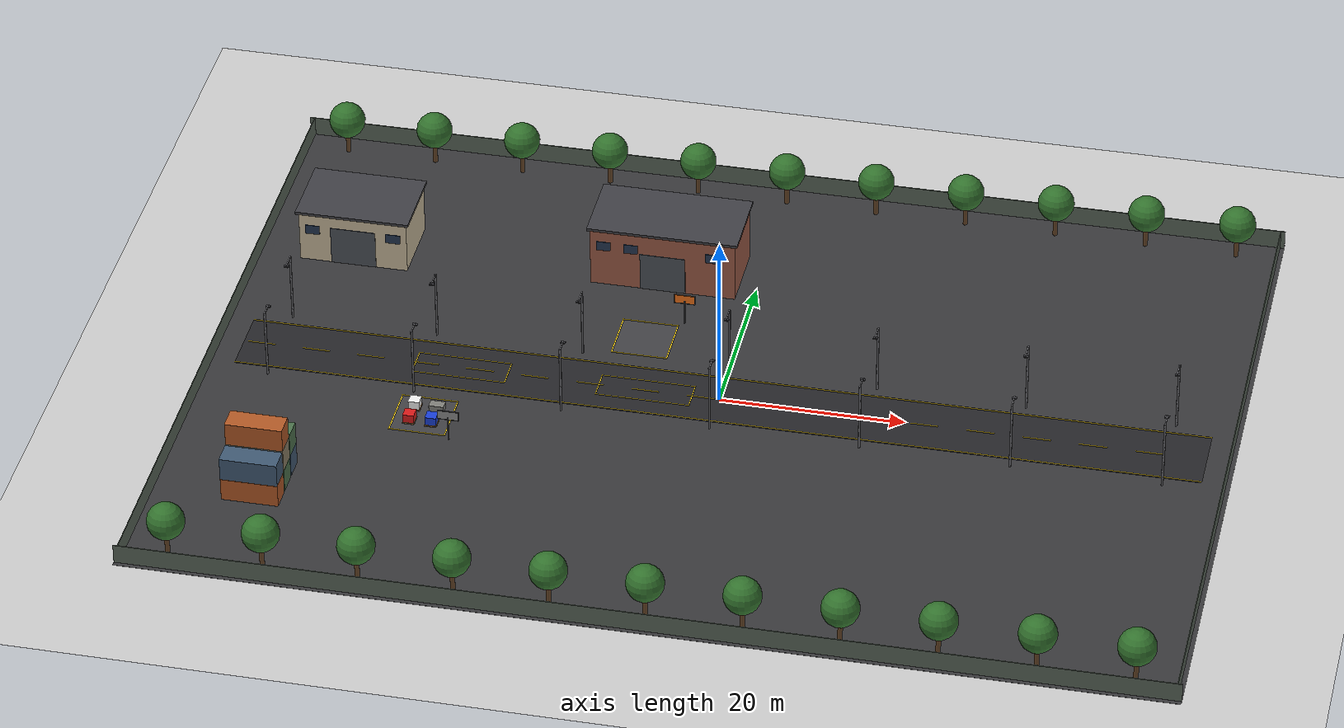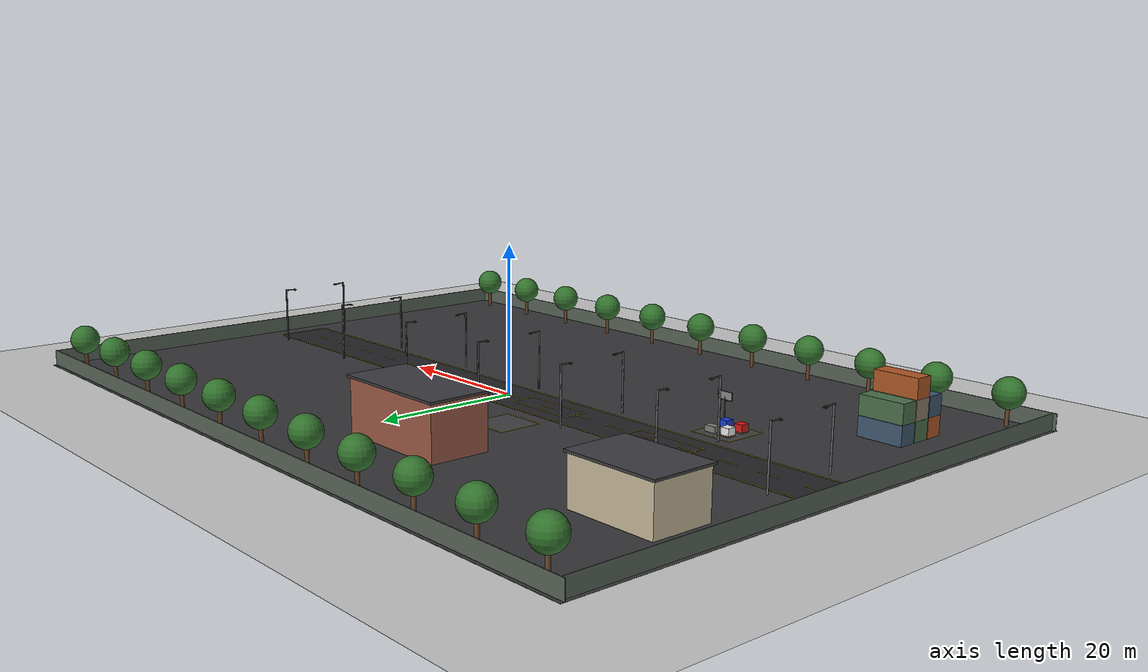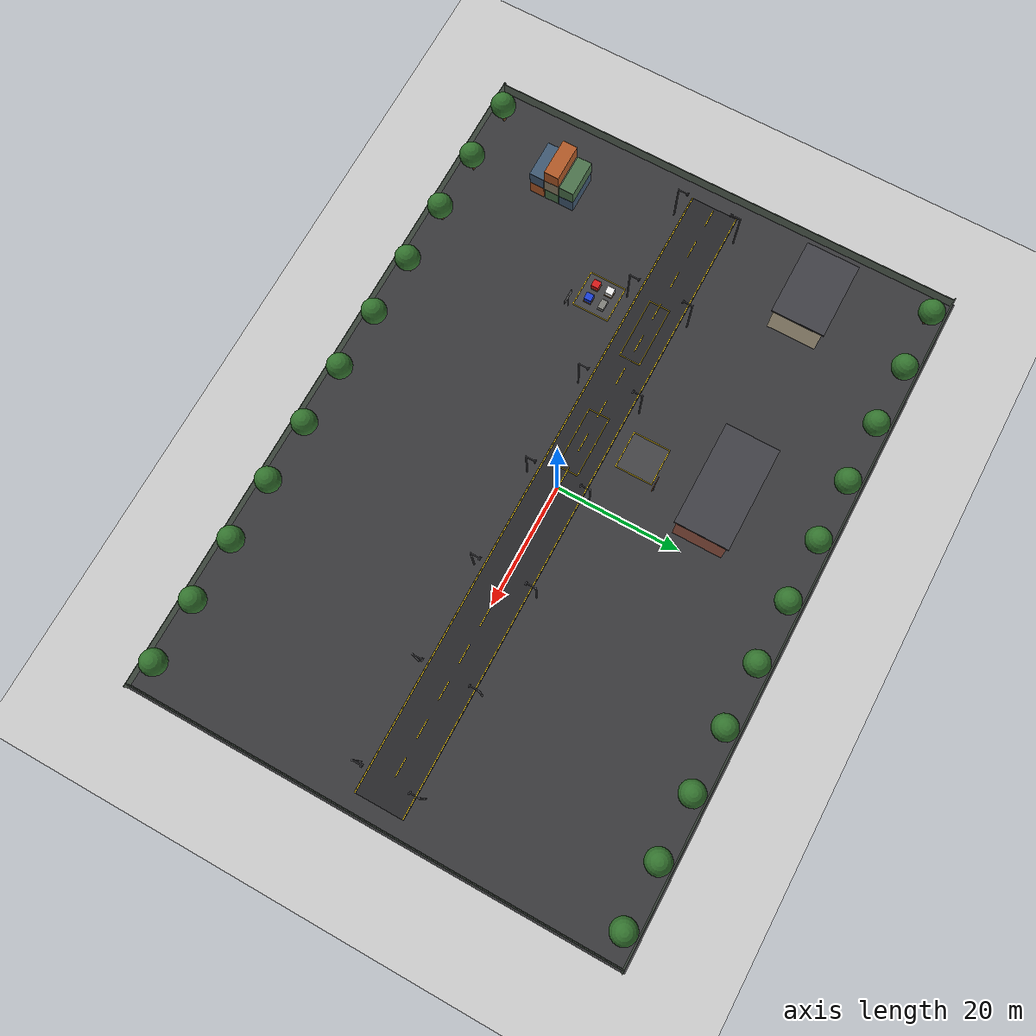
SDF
<sdf version="1.6">
 <world name="default">
  <include><uri>model://ground_plane</uri></include>
  <include><uri>model://sun</uri></include>
  <model name="saha">
   <static>true</static>
   <link name="link">
    <visual name="asfalt">
     <pose>0 0 0.01 0 0 0</pose>
     <geometry><box><size>110 80 0.02</size></box></geometry>
     <material><ambient>0.22 0.22 0.23 1</ambient><diffuse>0.22 0.22 0.23 1</diffuse></material>
    </visual>
    <visual name="yol">
     <pose>0 0 0.022 0 0 0</pose>
     <geometry><box><size>104 8 0.004</size></box></geometry>
     <material><ambient>0.15 0.15 0.16 1</ambient><diffuse>0.15 0.15 0.16 1</diffuse></material>
    </visual>
    <visual name="serit_l">
     <pose>0 3.85 0.026 0 0 0</pose>
     <geometry><box><size>104 0.15 0.004</size></box></geometry>
     <material><ambient>0.95 0.80 0.10 1</ambient><diffuse>0.95 0.80 0.10 1</diffuse></material>
    </visual>
    <visual name="serit_r">
     <pose>0 -3.85 0.026 0 0 0</pose>
     <geometry><box><size>104 0.15 0.004</size></box></geometry>
     <material><ambient>0.95 0.80 0.10 1</ambient><diffuse>0.95 0.80 0.10 1</diffuse></material>
    </visual>
    <visual name="orta_0">
     <pose>-50 0 0.026 0 0 0</pose>
     <geometry><box><size>3 0.15 0.004</size></box></geometry>
     <material><ambient>0.95 0.80 0.10 1</ambient><diffuse>0.95 0.80 0.10 1</diffuse></material>
    </visual>
    <visual name="orta_1">
     <pose>-44 0 0.026 0 0 0</pose>
     <geometry><box><size>3 0.15 0.004</size></box></geometry>
     <material><ambient>0.95 0.80 0.10 1</ambient><diffuse>0.95 0.80 0.10 1</diffuse></material>
    </visual>
    <visual name="orta_2">
     <pose>-38 0 0.026 0 0 0</pose>
     <geometry><box><size>3 0.15 0.004</size></box></geometry>
     <material><ambient>0.95 0.80 0.10 1</ambient><diffuse>0.95 0.80 0.10 1</diffuse></material>
    </visual>
    <visual name="orta_3">
     <pose>-32 0 0.026 0 0 0</pose>
     <geometry><box><size>3 0.15 0.004</size></box></geometry>
     <material><ambient>0.95 0.80 0.10 1</ambient><diffuse>0.95 0.80 0.10 1</diffuse></material>
    </visual>
    <visual name="orta_4">
     <pose>-26 0 0.026 0 0 0</pose>
     <geometry><box><size>3 0.15 0.004</size></box></geometry>
     <material><ambient>0.95 0.80 0.10 1</ambient><diffuse>0.95 0.80 0.10 1</diffuse></material>
    </visual>
    <visual name="orta_5">
     <pose>-20 0 0.026 0 0 0</pose>
     <geometry><box><size>3 0.15 0.004</size></box></geometry>
     <material><ambient>0.95 0.80 0.10 1</ambient><diffuse>0.95 0.80 0.10 1</diffuse></material>
    </visual>
    <visual name="orta_6">
     <pose>-14 0 0.026 0 0 0</pose>
     <geometry><box><size>3 0.15 0.004</size></box></geometry>
     <material><ambient>0.95 0.80 0.10 1</ambient><diffuse>0.95 0.80 0.10 1</diffuse></material>
    </visual>
    <visual name="orta_7">
     <pose>-8 0 0.026 0 0 0</pose>
     <geometry><box><size>3 0.15 0.004</size></box></geometry>
     <material><ambient>0.95 0.80 0.10 1</ambient><diffuse>0.95 0.80 0.10 1</diffuse></material>
    </visual>
    <visual name="orta_8">
     <pose>-2 0 0.026 0 0 0</pose>
     <geometry><box><size>3 0.15 0.004</size></box></geometry>
     <material><ambient>0.95 0.80 0.10 1</ambient><diffuse>0.95 0.80 0.10 1</diffuse></material>
    </visual>
    <visual name="orta_9">
     <pose>4 0 0.026 0 0 0</pose>
     <geometry><box><size>3 0.15 0.004</size></box></geometry>
     <material><ambient>0.95 0.80 0.10 1</ambient><diffuse>0.95 0.80 0.10 1</diffuse></material>
    </visual>
    <visual name="orta_10">
     <pose>10 0 0.026 0 0 0</pose>
     <geometry><box><size>3 0.15 0.004</size></box></geometry>
     <material><ambient>0.95 0.80 0.10 1</ambient><diffuse>0.95 0.80 0.10 1</diffuse></material>
    </visual>
    <visual name="orta_11">
     <pose>16 0 0.026 0 0 0</pose>
     <geometry><box><size>3 0.15 0.004</size></box></geometry>
     <material><ambient>0.95 0.80 0.10 1</ambient><diffuse>0.95 0.80 0.10 1</diffuse></material>
    </visual>
    <visual name="orta_12">
     <pose>22 0 0.026 0 0 0</pose>
     <geometry><box><size>3 0.15 0.004</size></box></geometry>
     <material><ambient>0.95 0.80 0.10 1</ambient><diffuse>0.95 0.80 0.10 1</diffuse></material>
    </visual>
    <visual name="orta_13">
     <pose>28 0 0.026 0 0 0</pose>
     <geometry><box><size>3 0.15 0.004</size></box></geometry>
     <material><ambient>0.95 0.80 0.10 1</ambient><diffuse>0.95 0.80 0.10 1</diffuse></material>
    </visual>
    <visual name="orta_14">
     <pose>34 0 0.026 0 0 0</pose>
     <geometry><box><size>3 0.15 0.004</size></box></geometry>
     <material><ambient>0.95 0.80 0.10 1</ambient><diffuse>0.95 0.80 0.10 1</diffuse></material>
    </visual>
    <visual name="orta_15">
     <pose>40 0 0.026 0 0 0</pose>
     <geometry><box><size>3 0.15 0.004</size></box></geometry>
     <material><ambient>0.95 0.80 0.10 1</ambient><diffuse>0.95 0.80 0.10 1</diffuse></material>
    </visual>
    <visual name="orta_16">
     <pose>46 0 0.026 0 0 0</pose>
     <geometry><box><size>3 0.15 0.004</size></box></geometry>
     <material><ambient>0.95 0.80 0.10 1</ambient><diffuse>0.95 0.80 0.10 1</diffuse></material>
    </visual>
   </link>
  </model>
  <model name="alan_stok">
   <static>true</static>
   <pose>-30 -9 0 0 0 0</pose>
   <link name="link">
    <visual name="zemin">
     <pose>0 0 0.024 0 0 0</pose>
     <geometry><box><size>6 6 0.006</size></box></geometry>
     <material><ambient>0.26 0.26 0.27 1</ambient><diffuse>0.26 0.26 0.27 1</diffuse></material>
    </visual>
    <visual name="cizgi_0">
     <pose>0 3 0.029 0 0 0</pose>
     <geometry><box><size>6.15 0.15 0.004</size></box></geometry>
     <material><ambient>0.95 0.80 0.10 1</ambient><diffuse>0.95 0.80 0.10 1</diffuse></material>
    </visual>
    <visual name="cizgi_1">
     <pose>0 -3 0.029 0 0 0</pose>
     <geometry><box><size>6.15 0.15 0.004</size></box></geometry>
     <material><ambient>0.95 0.80 0.10 1</ambient><diffuse>0.95 0.80 0.10 1</diffuse></material>
    </visual>
    <visual name="cizgi_2">
     <pose>3 0 0.029 0 0 0</pose>
     <geometry><box><size>0.15 6.15 0.004</size></box></geometry>
     <material><ambient>0.95 0.80 0.10 1</ambient><diffuse>0.95 0.80 0.10 1</diffuse></material>
    </visual>
    <visual name="cizgi_3">
     <pose>-3 0 0.029 0 0 0</pose>
     <geometry><box><size>0.15 6.15 0.004</size></box></geometry>
     <material><ambient>0.95 0.80 0.10 1</ambient><diffuse>0.95 0.80 0.10 1</diffuse></material>
    </visual>
    <visual name="direk">
     <pose>3.6 -3.6 1.5 0 0 0</pose>
     <geometry><cylinder><radius>0.07</radius><length>3.0</length></cylinder></geometry>
     <material><ambient>0.40 0.40 0.42 1</ambient><diffuse>0.40 0.40 0.42 1</diffuse></material>
    </visual>
    <visual name="tabela">
     <pose>3.6 -3.6 3.2 0 0 0</pose>
     <geometry><box><size>2.2 0.08 1</size></box></geometry>
     <material><ambient>0.55 0.55 0.55 1</ambient><diffuse>0.55 0.55 0.55 1</diffuse></material>
    </visual>
    <visual name="tabela_cerceve">
     <pose>3.6 -3.6 3.2 0 0 0</pose>
     <geometry><box><size>2.3 0.06 1.1</size></box></geometry>
     <material><ambient>0.25 0.25 0.27 1</ambient><diffuse>0.25 0.25 0.27 1</diffuse></material>
    </visual>
   </link>
  </model>
  <model name="park_stok">
   <static>true</static>
   <pose>-28 0 0 0 0 0</pose>
   <link name="link">
    <visual name="park_0">
     <pose>0 1.7 0.03 0 0 0</pose>
     <geometry><box><size>10.2 0.12 0.004</size></box></geometry>
     <material><ambient>0.95 0.80 0.10 1</ambient><diffuse>0.95 0.80 0.10 1</diffuse></material>
    </visual>
    <visual name="park_1">
     <pose>0 -1.7 0.03 0 0 0</pose>
     <geometry><box><size>10.2 0.12 0.004</size></box></geometry>
     <material><ambient>0.95 0.80 0.10 1</ambient><diffuse>0.95 0.80 0.10 1</diffuse></material>
    </visual>
    <visual name="park_2">
     <pose>5.05 0 0.03 0 0 0</pose>
     <geometry><box><size>0.12 3.4 0.004</size></box></geometry>
     <material><ambient>0.95 0.80 0.10 1</ambient><diffuse>0.95 0.80 0.10 1</diffuse></material>
    </visual>
    <visual name="park_3">
     <pose>-5.05 0 0.03 0 0 0</pose>
     <geometry><box><size>0.12 3.4 0.004</size></box></geometry>
     <material><ambient>0.95 0.80 0.10 1</ambient><diffuse>0.95 0.80 0.10 1</diffuse></material>
    </visual>
   </link>
  </model>
  <model name="alan_atolye">
   <static>true</static>
   <pose>-10 9 0 0 0 0</pose>
   <link name="link">
    <visual name="zemin">
     <pose>0 0 0.024 0 0 0</pose>
     <geometry><box><size>6 6 0.006</size></box></geometry>
     <material><ambient>0.26 0.26 0.27 1</ambient><diffuse>0.26 0.26 0.27 1</diffuse></material>
    </visual>
    <visual name="cizgi_0">
     <pose>0 3 0.029 0 0 0</pose>
     <geometry><box><size>6.15 0.15 0.004</size></box></geometry>
     <material><ambient>0.95 0.80 0.10 1</ambient><diffuse>0.95 0.80 0.10 1</diffuse></material>
    </visual>
    <visual name="cizgi_1">
     <pose>0 -3 0.029 0 0 0</pose>
     <geometry><box><size>6.15 0.15 0.004</size></box></geometry>
     <material><ambient>0.95 0.80 0.10 1</ambient><diffuse>0.95 0.80 0.10 1</diffuse></material>
    </visual>
    <visual name="cizgi_2">
     <pose>3 0 0.029 0 0 0</pose>
     <geometry><box><size>0.15 6.15 0.004</size></box></geometry>
     <material><ambient>0.95 0.80 0.10 1</ambient><diffuse>0.95 0.80 0.10 1</diffuse></material>
    </visual>
    <visual name="cizgi_3">
     <pose>-3 0 0.029 0 0 0</pose>
     <geometry><box><size>0.15 6.15 0.004</size></box></geometry>
     <material><ambient>0.95 0.80 0.10 1</ambient><diffuse>0.95 0.80 0.10 1</diffuse></material>
    </visual>
    <visual name="direk">
     <pose>3.6 3.6 1.5 0 0 0</pose>
     <geometry><cylinder><radius>0.07</radius><length>3.0</length></cylinder></geometry>
     <material><ambient>0.40 0.40 0.42 1</ambient><diffuse>0.40 0.40 0.42 1</diffuse></material>
    </visual>
    <visual name="tabela">
     <pose>3.6 3.6 3.2 0 0 0</pose>
     <geometry><box><size>2.2 0.08 1</size></box></geometry>
     <material><ambient>0.95 0.45 0.10 1</ambient><diffuse>0.95 0.45 0.10 1</diffuse></material>
    </visual>
    <visual name="tabela_cerceve">
     <pose>3.6 3.6 3.2 0 0 0</pose>
     <geometry><box><size>2.3 0.06 1.1</size></box></geometry>
     <material><ambient>0.25 0.25 0.27 1</ambient><diffuse>0.25 0.25 0.27 1</diffuse></material>
    </visual>
   </link>
  </model>
  <model name="park_atolye">
   <static>true</static>
   <pose>-8 0 0 0 0 0</pose>
   <link name="link">
    <visual name="park_0">
     <pose>0 1.7 0.03 0 0 0</pose>
     <geometry><box><size>10.2 0.12 0.004</size></box></geometry>
     <material><ambient>0.95 0.80 0.10 1</ambient><diffuse>0.95 0.80 0.10 1</diffuse></material>
    </visual>
    <visual name="park_1">
     <pose>0 -1.7 0.03 0 0 0</pose>
     <geometry><box><size>10.2 0.12 0.004</size></box></geometry>
     <material><ambient>0.95 0.80 0.10 1</ambient><diffuse>0.95 0.80 0.10 1</diffuse></material>
    </visual>
    <visual name="park_2">
     <pose>5.05 0 0.03 0 0 0</pose>
     <geometry><box><size>0.12 3.4 0.004</size></box></geometry>
     <material><ambient>0.95 0.80 0.10 1</ambient><diffuse>0.95 0.80 0.10 1</diffuse></material>
    </visual>
    <visual name="park_3">
     <pose>-5.05 0 0.03 0 0 0</pose>
     <geometry><box><size>0.12 3.4 0.004</size></box></geometry>
     <material><ambient>0.95 0.80 0.10 1</ambient><diffuse>0.95 0.80 0.10 1</diffuse></material>
    </visual>
   </link>
  </model>
  <model name="atolye_binasi">
   <static>true</static>
   <pose>-10 22 0 0 0 0</pose>
   <link name="link">
    <visual name="duvar">
     <pose>0 0 3.5 0 0 0</pose>
     <geometry><box><size>16 8 7</size></box></geometry>
     <material><ambient>0.62 0.36 0.28 1</ambient><diffuse>0.62 0.36 0.28 1</diffuse></material>
    </visual>
    <collision name="duvar_col">
     <pose>0 0 3.5 0 0 0</pose>
     <geometry><box><size>16 8 7</size></box></geometry>
    </collision>
    <visual name="cati">
     <pose>0 0 7.15 0 0 0</pose>
     <geometry><box><size>16.6 8.6 0.3</size></box></geometry>
     <material><ambient>0.25 0.25 0.27 1</ambient><diffuse>0.25 0.25 0.27 1</diffuse></material>
    </visual>
    <visual name="kapi">
     <pose>0 -4.02 2.25 0 0 0</pose>
     <geometry><box><size>5 0.04 4.5</size></box></geometry>
     <material><ambient>0.30 0.32 0.35 1</ambient><diffuse>0.30 0.32 0.35 1</diffuse></material>
    </visual>
    <visual name="pencere_0">
     <pose>-6.5 -4.02 5 0 0 0</pose>
     <geometry><box><size>1.6 0.04 1.1</size></box></geometry>
     <material><ambient>0.15 0.22 0.32 1</ambient><diffuse>0.15 0.22 0.32 1</diffuse></material>
    </visual>
    <visual name="pencere_1">
     <pose>-3.5 -4.02 5 0 0 0</pose>
     <geometry><box><size>1.6 0.04 1.1</size></box></geometry>
     <material><ambient>0.15 0.22 0.32 1</ambient><diffuse>0.15 0.22 0.32 1</diffuse></material>
    </visual>
    <visual name="pencere_4">
     <pose>5.5 -4.02 5 0 0 0</pose>
     <geometry><box><size>1.6 0.04 1.1</size></box></geometry>
     <material><ambient>0.15 0.22 0.32 1</ambient><diffuse>0.15 0.22 0.32 1</diffuse></material>
    </visual>
   </link>
  </model>
  <model name="ofis">
   <static>true</static>
   <pose>-44 20 0 0 0 0</pose>
   <link name="link">
    <visual name="duvar">
     <pose>0 0 3 0 0 0</pose>
     <geometry><box><size>12 8 6</size></box></geometry>
     <material><ambient>0.80 0.74 0.62 1</ambient><diffuse>0.80 0.74 0.62 1</diffuse></material>
    </visual>
    <collision name="duvar_col">
     <pose>0 0 3 0 0 0</pose>
     <geometry><box><size>12 8 6</size></box></geometry>
    </collision>
    <visual name="cati">
     <pose>0 0 6.15 0 0 0</pose>
     <geometry><box><size>12.6 8.6 0.3</size></box></geometry>
     <material><ambient>0.25 0.25 0.27 1</ambient><diffuse>0.25 0.25 0.27 1</diffuse></material>
    </visual>
    <visual name="kapi">
     <pose>0 -4.02 2.25 0 0 0</pose>
     <geometry><box><size>5 0.04 4.5</size></box></geometry>
     <material><ambient>0.30 0.32 0.35 1</ambient><diffuse>0.30 0.32 0.35 1</diffuse></material>
    </visual>
    <visual name="pencere_0">
     <pose>-4.5 -4.02 4 0 0 0</pose>
     <geometry><box><size>1.6 0.04 1.1</size></box></geometry>
     <material><ambient>0.15 0.22 0.32 1</ambient><diffuse>0.15 0.22 0.32 1</diffuse></material>
    </visual>
    <visual name="pencere_3">
     <pose>4.5 -4.02 4 0 0 0</pose>
     <geometry><box><size>1.6 0.04 1.1</size></box></geometry>
     <material><ambient>0.15 0.22 0.32 1</ambient><diffuse>0.15 0.22 0.32 1</diffuse></material>
    </visual>
   </link>
  </model>
  <model name="konteynerler">
   <static>true</static>
   <pose>-44 -26 0 0 0 0</pose>
   <link name="link">
    <visual name="konteyner_0">
     <pose>0 0 1.3 0 0 0</pose>
     <geometry><box><size>6.1 2.44 2.59</size></box></geometry>
     <material><ambient>0.70 0.35 0.15 1</ambient><diffuse>0.70 0.35 0.15 1</diffuse></material>
    </visual>
    <visual name="konteyner_1">
     <pose>0 0 3.9 0 0 0</pose>
     <geometry><box><size>6.1 2.44 2.59</size></box></geometry>
     <material><ambient>0.25 0.35 0.45 1</ambient><diffuse>0.25 0.35 0.45 1</diffuse></material>
    </visual>
    <visual name="konteyner_2">
     <pose>0 2.6 1.3 0 0 0</pose>
     <geometry><box><size>6.1 2.44 2.59</size></box></geometry>
     <material><ambient>0.30 0.45 0.30 1</ambient><diffuse>0.30 0.45 0.30 1</diffuse></material>
    </visual>
    <visual name="konteyner_3">
     <pose>0 2.6 3.9 0 0 0</pose>
     <geometry><box><size>6.1 2.44 2.59</size></box></geometry>
     <material><ambient>0.55 0.50 0.40 1</ambient><diffuse>0.55 0.50 0.40 1</diffuse></material>
    </visual>
    <visual name="konteyner_4">
     <pose>0 2.6 6.5 0 0 0</pose>
     <geometry><box><size>6.1 2.44 2.59</size></box></geometry>
     <material><ambient>0.70 0.35 0.15 1</ambient><diffuse>0.70 0.35 0.15 1</diffuse></material>
    </visual>
    <visual name="konteyner_5">
     <pose>0 5.2 1.3 0 0 0</pose>
     <geometry><box><size>6.1 2.44 2.59</size></box></geometry>
     <material><ambient>0.25 0.35 0.45 1</ambient><diffuse>0.25 0.35 0.45 1</diffuse></material>
    </visual>
    <visual name="konteyner_6">
     <pose>0 5.2 3.9 0 0 0</pose>
     <geometry><box><size>6.1 2.44 2.59</size></box></geometry>
     <material><ambient>0.30 0.45 0.30 1</ambient><diffuse>0.30 0.45 0.30 1</diffuse></material>
    </visual>
   </link>
  </model>
  <model name="direkler">
   <static>true</static>
   <link name="link">
    <visual name="direk_0_1">
     <pose>-48 5.2 4 0 0 0</pose>
     <geometry><cylinder><radius>0.12</radius><length>8.0</length></cylinder></geometry>
     <material><ambient>0.40 0.40 0.42 1</ambient><diffuse>0.40 0.40 0.42 1</diffuse></material>
    </visual>
    <visual name="kol_0_1">
     <pose>-48 4.4 7.9 0 0 0</pose>
     <geometry><box><size>0.12 1.6 0.12</size></box></geometry>
     <material><ambient>0.40 0.40 0.42 1</ambient><diffuse>0.40 0.40 0.42 1</diffuse></material>
    </visual>
    <visual name="lamba_0_1">
     <pose>-48 3.7 7.8 0 0 0</pose>
     <geometry><box><size>0.5 0.3 0.12</size></box></geometry>
     <material><ambient>0.25 0.25 0.27 1</ambient><diffuse>0.25 0.25 0.27 1</diffuse></material>
    </visual>
    <visual name="direk_0_-1">
     <pose>-48 -5.2 4 0 0 0</pose>
     <geometry><cylinder><radius>0.12</radius><length>8.0</length></cylinder></geometry>
     <material><ambient>0.40 0.40 0.42 1</ambient><diffuse>0.40 0.40 0.42 1</diffuse></material>
    </visual>
    <visual name="kol_0_-1">
     <pose>-48 -4.4 7.9 0 0 0</pose>
     <geometry><box><size>0.12 1.6 0.12</size></box></geometry>
     <material><ambient>0.40 0.40 0.42 1</ambient><diffuse>0.40 0.40 0.42 1</diffuse></material>
    </visual>
    <visual name="lamba_0_-1">
     <pose>-48 -3.7 7.8 0 0 0</pose>
     <geometry><box><size>0.5 0.3 0.12</size></box></geometry>
     <material><ambient>0.25 0.25 0.27 1</ambient><diffuse>0.25 0.25 0.27 1</diffuse></material>
    </visual>
    <visual name="direk_1_1">
     <pose>-32 5.2 4 0 0 0</pose>
     <geometry><cylinder><radius>0.12</radius><length>8.0</length></cylinder></geometry>
     <material><ambient>0.40 0.40 0.42 1</ambient><diffuse>0.40 0.40 0.42 1</diffuse></material>
    </visual>
    <visual name="kol_1_1">
     <pose>-32 4.4 7.9 0 0 0</pose>
     <geometry><box><size>0.12 1.6 0.12</size></box></geometry>
     <material><ambient>0.40 0.40 0.42 1</ambient><diffuse>0.40 0.40 0.42 1</diffuse></material>
    </visual>
    <visual name="lamba_1_1">
     <pose>-32 3.7 7.8 0 0 0</pose>
     <geometry><box><size>0.5 0.3 0.12</size></box></geometry>
     <material><ambient>0.25 0.25 0.27 1</ambient><diffuse>0.25 0.25 0.27 1</diffuse></material>
    </visual>
    <visual name="direk_1_-1">
     <pose>-32 -5.2 4 0 0 0</pose>
     <geometry><cylinder><radius>0.12</radius><length>8.0</length></cylinder></geometry>
     <material><ambient>0.40 0.40 0.42 1</ambient><diffuse>0.40 0.40 0.42 1</diffuse></material>
    </visual>
    <visual name="kol_1_-1">
     <pose>-32 -4.4 7.9 0 0 0</pose>
     <geometry><box><size>0.12 1.6 0.12</size></box></geometry>
     <material><ambient>0.40 0.40 0.42 1</ambient><diffuse>0.40 0.40 0.42 1</diffuse></material>
    </visual>
    <visual name="lamba_1_-1">
     <pose>-32 -3.7 7.8 0 0 0</pose>
     <geometry><box><size>0.5 0.3 0.12</size></box></geometry>
     <material><ambient>0.25 0.25 0.27 1</ambient><diffuse>0.25 0.25 0.27 1</diffuse></material>
    </visual>
    <visual name="direk_2_1">
     <pose>-16 5.2 4 0 0 0</pose>
     <geometry><cylinder><radius>0.12</radius><length>8.0</length></cylinder></geometry>
     <material><ambient>0.40 0.40 0.42 1</ambient><diffuse>0.40 0.40 0.42 1</diffuse></material>
    </visual>
    <visual name="kol_2_1">
     <pose>-16 4.4 7.9 0 0 0</pose>
     <geometry><box><size>0.12 1.6 0.12</size></box></geometry>
     <material><ambient>0.40 0.40 0.42 1</ambient><diffuse>0.40 0.40 0.42 1</diffuse></material>
    </visual>
    <visual name="lamba_2_1">
     <pose>-16 3.7 7.8 0 0 0</pose>
     <geometry><box><size>0.5 0.3 0.12</size></box></geometry>
     <material><ambient>0.25 0.25 0.27 1</ambient><diffuse>0.25 0.25 0.27 1</diffuse></material>
    </visual>
    <visual name="direk_2_-1">
     <pose>-16 -5.2 4 0 0 0</pose>
     <geometry><cylinder><radius>0.12</radius><length>8.0</length></cylinder></geometry>
     <material><ambient>0.40 0.40 0.42 1</ambient><diffuse>0.40 0.40 0.42 1</diffuse></material>
    </visual>
    <visual name="kol_2_-1">
     <pose>-16 -4.4 7.9 0 0 0</pose>
     <geometry><box><size>0.12 1.6 0.12</size></box></geometry>
     <material><ambient>0.40 0.40 0.42 1</ambient><diffuse>0.40 0.40 0.42 1</diffuse></material>
    </visual>
    <visual name="lamba_2_-1">
     <pose>-16 -3.7 7.8 0 0 0</pose>
     <geometry><box><size>0.5 0.3 0.12</size></box></geometry>
     <material><ambient>0.25 0.25 0.27 1</ambient><diffuse>0.25 0.25 0.27 1</diffuse></material>
    </visual>
    <visual name="direk_3_1">
     <pose>0 5.2 4 0 0 0</pose>
     <geometry><cylinder><radius>0.12</radius><length>8.0</length></cylinder></geometry>
     <material><ambient>0.40 0.40 0.42 1</ambient><diffuse>0.40 0.40 0.42 1</diffuse></material>
    </visual>
    <visual name="kol_3_1">
     <pose>0 4.4 7.9 0 0 0</pose>
     <geometry><box><size>0.12 1.6 0.12</size></box></geometry>
     <material><ambient>0.40 0.40 0.42 1</ambient><diffuse>0.40 0.40 0.42 1</diffuse></material>
    </visual>
    <visual name="lamba_3_1">
     <pose>0 3.7 7.8 0 0 0</pose>
     <geometry><box><size>0.5 0.3 0.12</size></box></geometry>
     <material><ambient>0.25 0.25 0.27 1</ambient><diffuse>0.25 0.25 0.27 1</diffuse></material>
    </visual>
    <visual name="direk_3_-1">
     <pose>0 -5.2 4 0 0 0</pose>
     <geometry><cylinder><radius>0.12</radius><length>8.0</length></cylinder></geometry>
     <material><ambient>0.40 0.40 0.42 1</ambient><diffuse>0.40 0.40 0.42 1</diffuse></material>
    </visual>
    <visual name="kol_3_-1">
     <pose>0 -4.4 7.9 0 0 0</pose>
     <geometry><box><size>0.12 1.6 0.12</size></box></geometry>
     <material><ambient>0.40 0.40 0.42 1</ambient><diffuse>0.40 0.40 0.42 1</diffuse></material>
    </visual>
    <visual name="lamba_3_-1">
     <pose>0 -3.7 7.8 0 0 0</pose>
     <geometry><box><size>0.5 0.3 0.12</size></box></geometry>
     <material><ambient>0.25 0.25 0.27 1</ambient><diffuse>0.25 0.25 0.27 1</diffuse></material>
    </visual>
    <visual name="direk_4_1">
     <pose>16 5.2 4 0 0 0</pose>
     <geometry><cylinder><radius>0.12</radius><length>8.0</length></cylinder></geometry>
     <material><ambient>0.40 0.40 0.42 1</ambient><diffuse>0.40 0.40 0.42 1</diffuse></material>
    </visual>
    <visual name="kol_4_1">
     <pose>16 4.4 7.9 0 0 0</pose>
     <geometry><box><size>0.12 1.6 0.12</size></box></geometry>
     <material><ambient>0.40 0.40 0.42 1</ambient><diffuse>0.40 0.40 0.42 1</diffuse></material>
    </visual>
    <visual name="lamba_4_1">
     <pose>16 3.7 7.8 0 0 0</pose>
     <geometry><box><size>0.5 0.3 0.12</size></box></geometry>
     <material><ambient>0.25 0.25 0.27 1</ambient><diffuse>0.25 0.25 0.27 1</diffuse></material>
    </visual>
    <visual name="direk_4_-1">
     <pose>16 -5.2 4 0 0 0</pose>
     <geometry><cylinder><radius>0.12</radius><length>8.0</length></cylinder></geometry>
     <material><ambient>0.40 0.40 0.42 1</ambient><diffuse>0.40 0.40 0.42 1</diffuse></material>
    </visual>
    <visual name="kol_4_-1">
     <pose>16 -4.4 7.9 0 0 0</pose>
     <geometry><box><size>0.12 1.6 0.12</size></box></geometry>
     <material><ambient>0.40 0.40 0.42 1</ambient><diffuse>0.40 0.40 0.42 1</diffuse></material>
    </visual>
    <visual name="lamba_4_-1">
     <pose>16 -3.7 7.8 0 0 0</pose>
     <geometry><box><size>0.5 0.3 0.12</size></box></geometry>
     <material><ambient>0.25 0.25 0.27 1</ambient><diffuse>0.25 0.25 0.27 1</diffuse></material>
    </visual>
    <visual name="direk_5_1">
     <pose>32 5.2 4 0 0 0</pose>
     <geometry><cylinder><radius>0.12</radius><length>8.0</length></cylinder></geometry>
     <material><ambient>0.40 0.40 0.42 1</ambient><diffuse>0.40 0.40 0.42 1</diffuse></material>
    </visual>
    <visual name="kol_5_1">
     <pose>32 4.4 7.9 0 0 0</pose>
     <geometry><box><size>0.12 1.6 0.12</size></box></geometry>
     <material><ambient>0.40 0.40 0.42 1</ambient><diffuse>0.40 0.40 0.42 1</diffuse></material>
    </visual>
    <visual name="lamba_5_1">
     <pose>32 3.7 7.8 0 0 0</pose>
     <geometry><box><size>0.5 0.3 0.12</size></box></geometry>
     <material><ambient>0.25 0.25 0.27 1</ambient><diffuse>0.25 0.25 0.27 1</diffuse></material>
    </visual>
    <visual name="direk_5_-1">
     <pose>32 -5.2 4 0 0 0</pose>
     <geometry><cylinder><radius>0.12</radius><length>8.0</length></cylinder></geometry>
     <material><ambient>0.40 0.40 0.42 1</ambient><diffuse>0.40 0.40 0.42 1</diffuse></material>
    </visual>
    <visual name="kol_5_-1">
     <pose>32 -4.4 7.9 0 0 0</pose>
     <geometry><box><size>0.12 1.6 0.12</size></box></geometry>
     <material><ambient>0.40 0.40 0.42 1</ambient><diffuse>0.40 0.40 0.42 1</diffuse></material>
    </visual>
    <visual name="lamba_5_-1">
     <pose>32 -3.7 7.8 0 0 0</pose>
     <geometry><box><size>0.5 0.3 0.12</size></box></geometry>
     <material><ambient>0.25 0.25 0.27 1</ambient><diffuse>0.25 0.25 0.27 1</diffuse></material>
    </visual>
    <visual name="direk_6_1">
     <pose>48 5.2 4 0 0 0</pose>
     <geometry><cylinder><radius>0.12</radius><length>8.0</length></cylinder></geometry>
     <material><ambient>0.40 0.40 0.42 1</ambient><diffuse>0.40 0.40 0.42 1</diffuse></material>
    </visual>
    <visual name="kol_6_1">
     <pose>48 4.4 7.9 0 0 0</pose>
     <geometry><box><size>0.12 1.6 0.12</size></box></geometry>
     <material><ambient>0.40 0.40 0.42 1</ambient><diffuse>0.40 0.40 0.42 1</diffuse></material>
    </visual>
    <visual name="lamba_6_1">
     <pose>48 3.7 7.8 0 0 0</pose>
     <geometry><box><size>0.5 0.3 0.12</size></box></geometry>
     <material><ambient>0.25 0.25 0.27 1</ambient><diffuse>0.25 0.25 0.27 1</diffuse></material>
    </visual>
    <visual name="direk_6_-1">
     <pose>48 -5.2 4 0 0 0</pose>
     <geometry><cylinder><radius>0.12</radius><length>8.0</length></cylinder></geometry>
     <material><ambient>0.40 0.40 0.42 1</ambient><diffuse>0.40 0.40 0.42 1</diffuse></material>
    </visual>
    <visual name="kol_6_-1">
     <pose>48 -4.4 7.9 0 0 0</pose>
     <geometry><box><size>0.12 1.6 0.12</size></box></geometry>
     <material><ambient>0.40 0.40 0.42 1</ambient><diffuse>0.40 0.40 0.42 1</diffuse></material>
    </visual>
    <visual name="lamba_6_-1">
     <pose>48 -3.7 7.8 0 0 0</pose>
     <geometry><box><size>0.5 0.3 0.12</size></box></geometry>
     <material><ambient>0.25 0.25 0.27 1</ambient><diffuse>0.25 0.25 0.27 1</diffuse></material>
    </visual>
   </link>
  </model>
  <model name="agaclar">
   <static>true</static>
   <link name="link">
    <visual name="govde_0">
     <pose>-50 37 1.5 0 0 0</pose>
     <geometry><cylinder><radius>0.25</radius><length>3.0</length></cylinder></geometry>
     <material><ambient>0.40 0.27 0.15 1</ambient><diffuse>0.40 0.27 0.15 1</diffuse></material>
    </visual>
    <visual name="yaprak_0">
     <pose>-50 37 4.2 0 0 0</pose>
     <geometry><sphere><radius>2.0</radius></sphere></geometry>
     <material><ambient>0.20 0.45 0.18 1</ambient><diffuse>0.20 0.45 0.18 1</diffuse></material>
    </visual>
    <visual name="govde_1">
     <pose>-50 -37 1.5 0 0 0</pose>
     <geometry><cylinder><radius>0.25</radius><length>3.0</length></cylinder></geometry>
     <material><ambient>0.40 0.27 0.15 1</ambient><diffuse>0.40 0.27 0.15 1</diffuse></material>
    </visual>
    <visual name="yaprak_1">
     <pose>-50 -37 4.2 0 0 0</pose>
     <geometry><sphere><radius>2.0</radius></sphere></geometry>
     <material><ambient>0.20 0.45 0.18 1</ambient><diffuse>0.20 0.45 0.18 1</diffuse></material>
    </visual>
    <visual name="govde_2">
     <pose>-40 37 1.5 0 0 0</pose>
     <geometry><cylinder><radius>0.25</radius><length>3.0</length></cylinder></geometry>
     <material><ambient>0.40 0.27 0.15 1</ambient><diffuse>0.40 0.27 0.15 1</diffuse></material>
    </visual>
    <visual name="yaprak_2">
     <pose>-40 37 4.2 0 0 0</pose>
     <geometry><sphere><radius>2.0</radius></sphere></geometry>
     <material><ambient>0.20 0.45 0.18 1</ambient><diffuse>0.20 0.45 0.18 1</diffuse></material>
    </visual>
    <visual name="govde_3">
     <pose>-40 -37 1.5 0 0 0</pose>
     <geometry><cylinder><radius>0.25</radius><length>3.0</length></cylinder></geometry>
     <material><ambient>0.40 0.27 0.15 1</ambient><diffuse>0.40 0.27 0.15 1</diffuse></material>
    </visual>
    <visual name="yaprak_3">
     <pose>-40 -37 4.2 0 0 0</pose>
     <geometry><sphere><radius>2.0</radius></sphere></geometry>
     <material><ambient>0.20 0.45 0.18 1</ambient><diffuse>0.20 0.45 0.18 1</diffuse></material>
    </visual>
    <visual name="govde_4">
     <pose>-30 37 1.5 0 0 0</pose>
     <geometry><cylinder><radius>0.25</radius><length>3.0</length></cylinder></geometry>
     <material><ambient>0.40 0.27 0.15 1</ambient><diffuse>0.40 0.27 0.15 1</diffuse></material>
    </visual>
    <visual name="yaprak_4">
     <pose>-30 37 4.2 0 0 0</pose>
     <geometry><sphere><radius>2.0</radius></sphere></geometry>
     <material><ambient>0.20 0.45 0.18 1</ambient><diffuse>0.20 0.45 0.18 1</diffuse></material>
    </visual>
    <visual name="govde_5">
     <pose>-30 -37 1.5 0 0 0</pose>
     <geometry><cylinder><radius>0.25</radius><length>3.0</length></cylinder></geometry>
     <material><ambient>0.40 0.27 0.15 1</ambient><diffuse>0.40 0.27 0.15 1</diffuse></material>
    </visual>
    <visual name="yaprak_5">
     <pose>-30 -37 4.2 0 0 0</pose>
     <geometry><sphere><radius>2.0</radius></sphere></geometry>
     <material><ambient>0.20 0.45 0.18 1</ambient><diffuse>0.20 0.45 0.18 1</diffuse></material>
    </visual>
    <visual name="govde_6">
     <pose>-20 37 1.5 0 0 0</pose>
     <geometry><cylinder><radius>0.25</radius><length>3.0</length></cylinder></geometry>
     <material><ambient>0.40 0.27 0.15 1</ambient><diffuse>0.40 0.27 0.15 1</diffuse></material>
    </visual>
    <visual name="yaprak_6">
     <pose>-20 37 4.2 0 0 0</pose>
     <geometry><sphere><radius>2.0</radius></sphere></geometry>
     <material><ambient>0.20 0.45 0.18 1</ambient><diffuse>0.20 0.45 0.18 1</diffuse></material>
    </visual>
    <visual name="govde_7">
     <pose>-20 -37 1.5 0 0 0</pose>
     <geometry><cylinder><radius>0.25</radius><length>3.0</length></cylinder></geometry>
     <material><ambient>0.40 0.27 0.15 1</ambient><diffuse>0.40 0.27 0.15 1</diffuse></material>
    </visual>
    <visual name="yaprak_7">
     <pose>-20 -37 4.2 0 0 0</pose>
     <geometry><sphere><radius>2.0</radius></sphere></geometry>
     <material><ambient>0.20 0.45 0.18 1</ambient><diffuse>0.20 0.45 0.18 1</diffuse></material>
    </visual>
    <visual name="govde_8">
     <pose>-10 37 1.5 0 0 0</pose>
     <geometry><cylinder><radius>0.25</radius><length>3.0</length></cylinder></geometry>
     <material><ambient>0.40 0.27 0.15 1</ambient><diffuse>0.40 0.27 0.15 1</diffuse></material>
    </visual>
    <visual name="yaprak_8">
     <pose>-10 37 4.2 0 0 0</pose>
     <geometry><sphere><radius>2.0</radius></sphere></geometry>
     <material><ambient>0.20 0.45 0.18 1</ambient><diffuse>0.20 0.45 0.18 1</diffuse></material>
    </visual>
    <visual name="govde_9">
     <pose>-10 -37 1.5 0 0 0</pose>
     <geometry><cylinder><radius>0.25</radius><length>3.0</length></cylinder></geometry>
     <material><ambient>0.40 0.27 0.15 1</ambient><diffuse>0.40 0.27 0.15 1</diffuse></material>
    </visual>
    <visual name="yaprak_9">
     <pose>-10 -37 4.2 0 0 0</pose>
     <geometry><sphere><radius>2.0</radius></sphere></geometry>
     <material><ambient>0.20 0.45 0.18 1</ambient><diffuse>0.20 0.45 0.18 1</diffuse></material>
    </visual>
    <visual name="govde_10">
     <pose>0 37 1.5 0 0 0</pose>
     <geometry><cylinder><radius>0.25</radius><length>3.0</length></cylinder></geometry>
     <material><ambient>0.40 0.27 0.15 1</ambient><diffuse>0.40 0.27 0.15 1</diffuse></material>
    </visual>
    <visual name="yaprak_10">
     <pose>0 37 4.2 0 0 0</pose>
     <geometry><sphere><radius>2.0</radius></sphere></geometry>
     <material><ambient>0.20 0.45 0.18 1</ambient><diffuse>0.20 0.45 0.18 1</diffuse></material>
    </visual>
    <visual name="govde_11">
     <pose>0 -37 1.5 0 0 0</pose>
     <geometry><cylinder><radius>0.25</radius><length>3.0</length></cylinder></geometry>
     <material><ambient>0.40 0.27 0.15 1</ambient><diffuse>0.40 0.27 0.15 1</diffuse></material>
    </visual>
    <visual name="yaprak_11">
     <pose>0 -37 4.2 0 0 0</pose>
     <geometry><sphere><radius>2.0</radius></sphere></geometry>
     <material><ambient>0.20 0.45 0.18 1</ambient><diffuse>0.20 0.45 0.18 1</diffuse></material>
    </visual>
    <visual name="govde_12">
     <pose>10 37 1.5 0 0 0</pose>
     <geometry><cylinder><radius>0.25</radius><length>3.0</length></cylinder></geometry>
     <material><ambient>0.40 0.27 0.15 1</ambient><diffuse>0.40 0.27 0.15 1</diffuse></material>
    </visual>
    <visual name="yaprak_12">
     <pose>10 37 4.2 0 0 0</pose>
     <geometry><sphere><radius>2.0</radius></sphere></geometry>
     <material><ambient>0.20 0.45 0.18 1</ambient><diffuse>0.20 0.45 0.18 1</diffuse></material>
    </visual>
    <visual name="govde_13">
     <pose>10 -37 1.5 0 0 0</pose>
     <geometry><cylinder><radius>0.25</radius><length>3.0</length></cylinder></geometry>
     <material><ambient>0.40 0.27 0.15 1</ambient><diffuse>0.40 0.27 0.15 1</diffuse></material>
    </visual>
    <visual name="yaprak_13">
     <pose>10 -37 4.2 0 0 0</pose>
     <geometry><sphere><radius>2.0</radius></sphere></geometry>
     <material><ambient>0.20 0.45 0.18 1</ambient><diffuse>0.20 0.45 0.18 1</diffuse></material>
    </visual>
    <visual name="govde_14">
     <pose>20 37 1.5 0 0 0</pose>
     <geometry><cylinder><radius>0.25</radius><length>3.0</length></cylinder></geometry>
     <material><ambient>0.40 0.27 0.15 1</ambient><diffuse>0.40 0.27 0.15 1</diffuse></material>
    </visual>
    <visual name="yaprak_14">
     <pose>20 37 4.2 0 0 0</pose>
     <geometry><sphere><radius>2.0</radius></sphere></geometry>
     <material><ambient>0.20 0.45 0.18 1</ambient><diffuse>0.20 0.45 0.18 1</diffuse></material>
    </visual>
    <visual name="govde_15">
     <pose>20 -37 1.5 0 0 0</pose>
     <geometry><cylinder><radius>0.25</radius><length>3.0</length></cylinder></geometry>
     <material><ambient>0.40 0.27 0.15 1</ambient><diffuse>0.40 0.27 0.15 1</diffuse></material>
    </visual>
    <visual name="yaprak_15">
     <pose>20 -37 4.2 0 0 0</pose>
     <geometry><sphere><radius>2.0</radius></sphere></geometry>
     <material><ambient>0.20 0.45 0.18 1</ambient><diffuse>0.20 0.45 0.18 1</diffuse></material>
    </visual>
    <visual name="govde_16">
     <pose>30 37 1.5 0 0 0</pose>
     <geometry><cylinder><radius>0.25</radius><length>3.0</length></cylinder></geometry>
     <material><ambient>0.40 0.27 0.15 1</ambient><diffuse>0.40 0.27 0.15 1</diffuse></material>
    </visual>
    <visual name="yaprak_16">
     <pose>30 37 4.2 0 0 0</pose>
     <geometry><sphere><radius>2.0</radius></sphere></geometry>
     <material><ambient>0.20 0.45 0.18 1</ambient><diffuse>0.20 0.45 0.18 1</diffuse></material>
    </visual>
    <visual name="govde_17">
     <pose>30 -37 1.5 0 0 0</pose>
     <geometry><cylinder><radius>0.25</radius><length>3.0</length></cylinder></geometry>
     <material><ambient>0.40 0.27 0.15 1</ambient><diffuse>0.40 0.27 0.15 1</diffuse></material>
    </visual>
    <visual name="yaprak_17">
     <pose>30 -37 4.2 0 0 0</pose>
     <geometry><sphere><radius>2.0</radius></sphere></geometry>
     <material><ambient>0.20 0.45 0.18 1</ambient><diffuse>0.20 0.45 0.18 1</diffuse></material>
    </visual>
    <visual name="govde_18">
     <pose>40 37 1.5 0 0 0</pose>
     <geometry><cylinder><radius>0.25</radius><length>3.0</length></cylinder></geometry>
     <material><ambient>0.40 0.27 0.15 1</ambient><diffuse>0.40 0.27 0.15 1</diffuse></material>
    </visual>
    <visual name="yaprak_18">
     <pose>40 37 4.2 0 0 0</pose>
     <geometry><sphere><radius>2.0</radius></sphere></geometry>
     <material><ambient>0.20 0.45 0.18 1</ambient><diffuse>0.20 0.45 0.18 1</diffuse></material>
    </visual>
    <visual name="govde_19">
     <pose>40 -37 1.5 0 0 0</pose>
     <geometry><cylinder><radius>0.25</radius><length>3.0</length></cylinder></geometry>
     <material><ambient>0.40 0.27 0.15 1</ambient><diffuse>0.40 0.27 0.15 1</diffuse></material>
    </visual>
    <visual name="yaprak_19">
     <pose>40 -37 4.2 0 0 0</pose>
     <geometry><sphere><radius>2.0</radius></sphere></geometry>
     <material><ambient>0.20 0.45 0.18 1</ambient><diffuse>0.20 0.45 0.18 1</diffuse></material>
    </visual>
    <visual name="govde_20">
     <pose>50 37 1.5 0 0 0</pose>
     <geometry><cylinder><radius>0.25</radius><length>3.0</length></cylinder></geometry>
     <material><ambient>0.40 0.27 0.15 1</ambient><diffuse>0.40 0.27 0.15 1</diffuse></material>
    </visual>
    <visual name="yaprak_20">
     <pose>50 37 4.2 0 0 0</pose>
     <geometry><sphere><radius>2.0</radius></sphere></geometry>
     <material><ambient>0.20 0.45 0.18 1</ambient><diffuse>0.20 0.45 0.18 1</diffuse></material>
    </visual>
    <visual name="govde_21">
     <pose>50 -37 1.5 0 0 0</pose>
     <geometry><cylinder><radius>0.25</radius><length>3.0</length></cylinder></geometry>
     <material><ambient>0.40 0.27 0.15 1</ambient><diffuse>0.40 0.27 0.15 1</diffuse></material>
    </visual>
    <visual name="yaprak_21">
     <pose>50 -37 4.2 0 0 0</pose>
     <geometry><sphere><radius>2.0</radius></sphere></geometry>
     <material><ambient>0.20 0.45 0.18 1</ambient><diffuse>0.20 0.45 0.18 1</diffuse></material>
    </visual>
   </link>
  </model>
  <model name="cit">
   <static>true</static>
   <link name="link">
    <visual name="cit_0">
     <pose>0 39.5 1.1 0 0 0</pose>
     <geometry><box><size>110 0.08 2.2</size></box></geometry>
     <material><ambient>0.35 0.40 0.35 1</ambient><diffuse>0.35 0.40 0.35 1</diffuse></material>
    </visual>
    <visual name="cit_1">
     <pose>0 -39.5 1.1 0 0 0</pose>
     <geometry><box><size>110 0.08 2.2</size></box></geometry>
     <material><ambient>0.35 0.40 0.35 1</ambient><diffuse>0.35 0.40 0.35 1</diffuse></material>
    </visual>
    <visual name="cit_2">
     <pose>54.5 0 1.1 0 0 0</pose>
     <geometry><box><size>0.08 79 2.2</size></box></geometry>
     <material><ambient>0.35 0.40 0.35 1</ambient><diffuse>0.35 0.40 0.35 1</diffuse></material>
    </visual>
    <visual name="cit_3">
     <pose>-54.5 0 1.1 0 0 0</pose>
     <geometry><box><size>0.08 79 2.2</size></box></geometry>
     <material><ambient>0.35 0.40 0.35 1</ambient><diffuse>0.35 0.40 0.35 1</diffuse></material>
    </visual>
   </link>
  </model>
  <model name="kirmizi_kasa">
   <pose>-31.2 -10.2 0.03 0 0 0</pose>
   <link name="link">
    <kinematic>1</kinematic>
    <gravity>0</gravity>
    <inertial>
     <mass>500</mass>
     <inertia><ixx>100</ixx><iyy>100</iyy><izz>100</izz><ixy>0</ixy><ixz>0</ixz><iyz>0</iyz></inertia>
    </inertial>
    <visual name="palet">
     <pose>0 0 0.075 0 0 0</pose>
     <geometry><box><size>1.3 1.3 0.15</size></box></geometry>
     <material><ambient>0.55 0.38 0.20 1</ambient><diffuse>0.55 0.38 0.20 1</diffuse></material>
    </visual>
    <visual name="kasa">
     <pose>0 0 0.625 0 0 0</pose>
     <geometry><box><size>1.2 1.2 0.95</size></box></geometry>
     <material><ambient>0.85 0.10 0.10 1</ambient><diffuse>0.85 0.10 0.10 1</diffuse></material>
    </visual>
    <collision name="col_col">
     <pose>0 0 0.55 0 0 0</pose>
     <geometry><box><size>1.2 1.2 1.1</size></box></geometry>
    </collision>
   </link>
  </model>
  <model name="mavi_kasa">
   <pose>-28.8 -10.2 0.03 0 0 0</pose>
   <link name="link">
    <kinematic>1</kinematic>
    <gravity>0</gravity>
    <inertial>
     <mass>500</mass>
     <inertia><ixx>100</ixx><iyy>100</iyy><izz>100</izz><ixy>0</ixy><ixz>0</ixz><iyz>0</iyz></inertia>
    </inertial>
    <visual name="palet">
     <pose>0 0 0.075 0 0 0</pose>
     <geometry><box><size>1.3 1.3 0.15</size></box></geometry>
     <material><ambient>0.55 0.38 0.20 1</ambient><diffuse>0.55 0.38 0.20 1</diffuse></material>
    </visual>
    <visual name="kasa">
     <pose>0 0 0.625 0 0 0</pose>
     <geometry><box><size>1.2 1.2 0.95</size></box></geometry>
     <material><ambient>0.10 0.25 0.85 1</ambient><diffuse>0.10 0.25 0.85 1</diffuse></material>
    </visual>
    <collision name="col_col">
     <pose>0 0 0.55 0 0 0</pose>
     <geometry><box><size>1.2 1.2 1.1</size></box></geometry>
    </collision>
   </link>
  </model>
  <model name="beyaz_kasa">
   <pose>-31.2 -7.8 0.03 0 0 0</pose>
   <link name="link">
    <kinematic>1</kinematic>
    <gravity>0</gravity>
    <inertial>
     <mass>500</mass>
     <inertia><ixx>100</ixx><iyy>100</iyy><izz>100</izz><ixy>0</ixy><ixz>0</ixz><iyz>0</iyz></inertia>
    </inertial>
    <visual name="palet">
     <pose>0 0 0.075 0 0 0</pose>
     <geometry><box><size>1.3 1.3 0.15</size></box></geometry>
     <material><ambient>0.55 0.38 0.20 1</ambient><diffuse>0.55 0.38 0.20 1</diffuse></material>
    </visual>
    <visual name="kasa">
     <pose>0 0 0.625 0 0 0</pose>
     <geometry><box><size>1.2 1.2 0.95</size></box></geometry>
     <material><ambient>0.95 0.95 0.95 1</ambient><diffuse>0.95 0.95 0.95 1</diffuse></material>
    </visual>
    <collision name="col_col">
     <pose>0 0 0.55 0 0 0</pose>
     <geometry><box><size>1.2 1.2 1.1</size></box></geometry>
    </collision>
   </link>
  </model>
  <model name="beton_blok">
   <pose>-28.8 -7.8 0.03 0 0 0</pose>
   <link name="link">
    <kinematic>1</kinematic>
    <gravity>0</gravity>
    <inertial>
     <mass>500</mass>
     <inertia><ixx>100</ixx><iyy>100</iyy><izz>100</izz><ixy>0</ixy><ixz>0</ixz><iyz>0</iyz></inertia>
    </inertial>
    <visual name="blok">
     <pose>0 0 0.4 0 0 0</pose>
     <geometry><box><size>1.6 1 0.8</size></box></geometry>
     <material><ambient>0.50 0.50 0.48 1</ambient><diffuse>0.50 0.50 0.48 1</diffuse></material>
    </visual>
    <collision name="col_col">
     <pose>0 0 0.4 0 0 0</pose>
     <geometry><box><size>1.6 1 0.8</size></box></geometry>
    </collision>
   </link>
  </model>
 </world>
</sdf>
